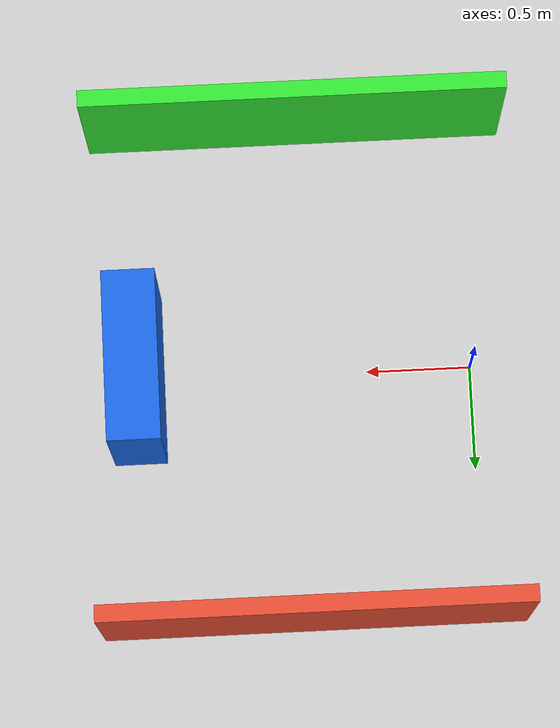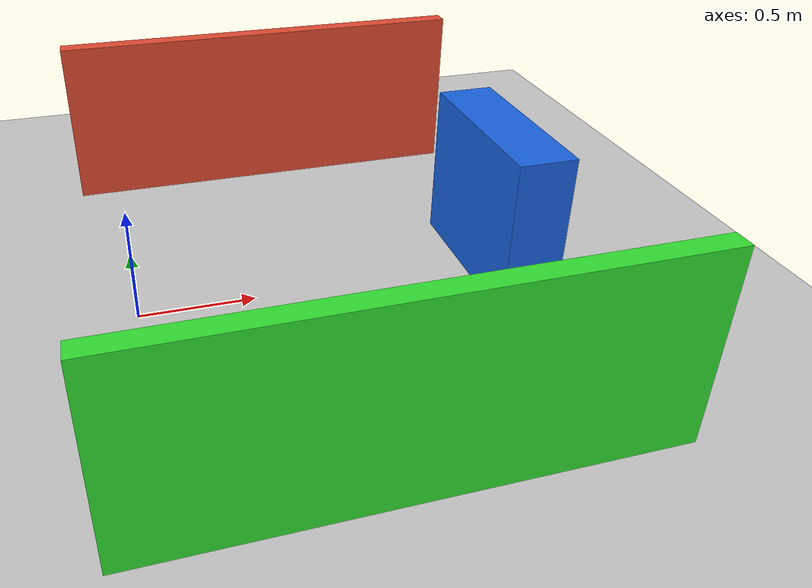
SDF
<?xml version="1.0" ?>
<sdf version="1.9">
  <world name="lunshi_sensor_test">
    <physics name="1ms" type="ignored">
      <max_step_size>0.001</max_step_size>
      <real_time_factor>1.0</real_time_factor>
    </physics>
    <plugin filename="gz-sim-physics-system" name="gz::sim::systems::Physics"/>
    <plugin filename="gz-sim-user-commands-system" name="gz::sim::systems::UserCommands"/>
    <plugin filename="gz-sim-scene-broadcaster-system" name="gz::sim::systems::SceneBroadcaster"/>
    <plugin filename="gz-sim-sensors-system" name="gz::sim::systems::Sensors">
      <render_engine>ogre2</render_engine>
    </plugin>
    <plugin filename="gz-sim-imu-system" name="gz::sim::systems::Imu"/>

    <light type="directional" name="sun">
      <cast_shadows>true</cast_shadows>
      <pose>0 0 10 0 0 0</pose>
      <diffuse>0.8 0.8 0.8 1</diffuse>
      <specular>0.2 0.2 0.2 1</specular>
      <attenuation>
        <range>1000</range>
        <constant>0.9</constant>
        <linear>0.01</linear>
        <quadratic>0.001</quadratic>
      </attenuation>
      <direction>-0.5 0.1 -0.9</direction>
    </light>

    <model name="ground_plane">
      <static>true</static>
      <link name="link">
        <collision name="collision">
          <geometry><plane><normal>0 0 1</normal><size>20 20</size></plane></geometry>
        </collision>
        <visual name="visual">
          <geometry><plane><normal>0 0 1</normal><size>20 20</size></plane></geometry>
          <material><ambient>0.8 0.8 0.8 1</ambient><diffuse>0.8 0.8 0.8 1</diffuse></material>
        </visual>
      </link>
    </model>

    <!-- Simple lidar/camera targets in front of the vehicle. -->
    <model name="front_box_target">
      <static>true</static>
      <pose>1.6 0 0.35 0 0 0</pose>
      <link name="link">
        <collision name="collision"><geometry><box><size>0.25 0.8 0.7</size></box></geometry></collision>
        <visual name="visual"><geometry><box><size>0.25 0.8 0.7</size></box></geometry><material><ambient>0.1 0.4 0.9 1</ambient><diffuse>0.1 0.4 0.9 1</diffuse></material></visual>
      </link>
    </model>

    <model name="left_lidar_wall">
      <static>true</static>
      <pose>0.8 1.2 0.4 0 0 0</pose>
      <link name="link">
        <collision name="collision"><geometry><box><size>2.0 0.08 0.8</size></box></geometry></collision>
        <visual name="visual"><geometry><box><size>2.0 0.08 0.8</size></box></geometry><material><ambient>0.9 0.3 0.2 1</ambient><diffuse>0.9 0.3 0.2 1</diffuse></material></visual>
      </link>
    </model>

    <model name="right_lidar_wall">
      <static>true</static>
      <pose>0.8 -1.2 0.4 0 0 0</pose>
      <link name="link">
        <collision name="collision"><geometry><box><size>2.0 0.08 0.8</size></box></geometry></collision>
        <visual name="visual"><geometry><box><size>2.0 0.08 0.8</size></box></geometry><material><ambient>0.2 0.9 0.2 1</ambient><diffuse>0.2 0.9 0.2 1</diffuse></material></visual>
      </link>
    </model>
  </world>
</sdf>
